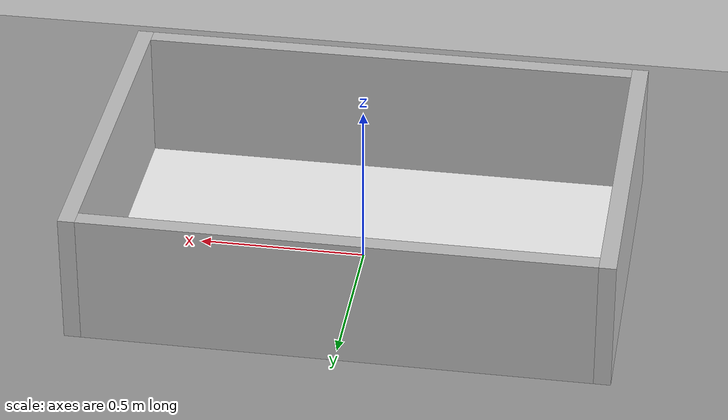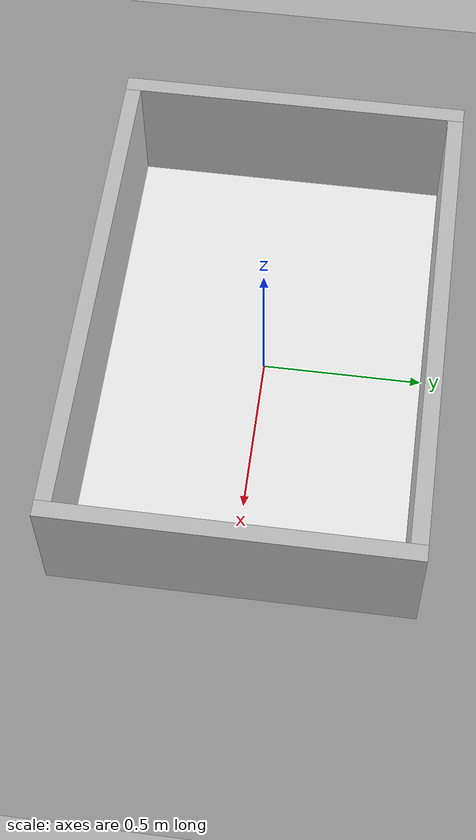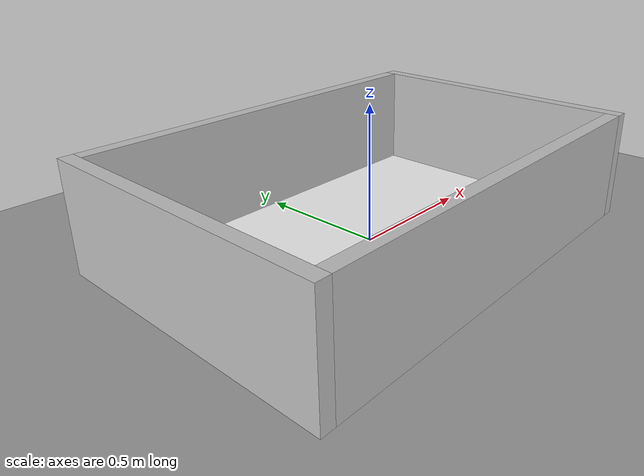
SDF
<?xml version="1.0" ?>
<sdf version="1.8">
  <world name="box_arena">

    <physics name="1ms" type="ignored">
      <max_step_size>0.001</max_step_size>
      <real_time_factor>1.0</real_time_factor>
    </physics>

    <plugin filename="gz-sim-physics-system"        name="gz::sim::systems::Physics"/>
    <plugin filename="gz-sim-sensors-system"         name="gz::sim::systems::Sensors">
      <render_engine>ogre2</render_engine>
    </plugin>
    <plugin filename="gz-sim-user-commands-system"   name="gz::sim::systems::UserCommands"/>
    <plugin filename="gz-sim-scene-broadcaster-system" name="gz::sim::systems::SceneBroadcaster"/>
    <plugin filename="gz-sim-imu-system"             name="gz::sim::systems::Imu"/>

    <light type="directional" name="sun">
      <cast_shadows>true</cast_shadows>
      <pose>0 0 10 0 0 0</pose>
      <diffuse>0.8 0.8 0.8 1</diffuse>
      <specular>0.2 0.2 0.2 1</specular>
      <attenuation>
        <range>1000</range>
        <constant>0.9</constant>
        <linear>0.01</linear>
        <quadratic>0.001</quadratic>
      </attenuation>
      <direction>-0.5 0.1 -0.9</direction>
    </light>

    <!-- Infinite ground plane for collision -->
    <model name="ground_plane">
      <static>true</static>
      <link name="link">
        <collision name="collision">
          <geometry>
            <plane>
              <normal>0 0 1</normal>
              <size>100 100</size>
            </plane>
          </geometry>
        </collision>
        <visual name="visual">
          <geometry>
            <plane>
              <normal>0 0 1</normal>
              <size>100 100</size>
            </plane>
          </geometry>
          <material>
            <ambient>0.6 0.6 0.6 1</ambient>
            <diffuse>0.6 0.6 0.6 1</diffuse>
            <specular>0.1 0.1 0.1 1</specular>
          </material>
        </visual>
      </link>
    </model>

    <!-- Arena floor marker (visual only, no collision – ground_plane handles it) -->
    <model name="arena_floor">
      <static>true</static>
      <pose>0 0 0.001 0 0 0</pose>
      <link name="link">
        <visual name="visual">
          <geometry>
            <box><size>1.5 1.0 0.002</size></box>
          </geometry>
          <material>
            <ambient>0.95 0.95 0.95 1</ambient>
            <diffuse>0.95 0.95 0.95 1</diffuse>
            <specular>0.05 0.05 0.05 1</specular>
          </material>
        </visual>
      </link>
    </model>

    <!-- North wall (y+) -->
    <model name="north_wall">
      <static>true</static>
      <pose>0 0.525 0.2 0 0 0</pose>
      <link name="link">
        <collision name="collision">
          <geometry><box><size>1.5 0.05 0.4</size></box></geometry>
        </collision>
        <visual name="visual">
          <geometry><box><size>1.5 0.05 0.4</size></box></geometry>
          <material>
            <ambient>0.75 0.75 0.75 1</ambient>
            <diffuse>0.75 0.75 0.75 1</diffuse>
            <specular>0.1 0.1 0.1 1</specular>
          </material>
        </visual>
      </link>
    </model>

    <!-- South wall (y-) -->
    <model name="south_wall">
      <static>true</static>
      <pose>0 -0.525 0.2 0 0 0</pose>
      <link name="link">
        <collision name="collision">
          <geometry><box><size>1.5 0.05 0.4</size></box></geometry>
        </collision>
        <visual name="visual">
          <geometry><box><size>1.5 0.05 0.4</size></box></geometry>
          <material>
            <ambient>0.75 0.75 0.75 1</ambient>
            <diffuse>0.75 0.75 0.75 1</diffuse>
            <specular>0.1 0.1 0.1 1</specular>
          </material>
        </visual>
      </link>
    </model>

    <!-- East wall (x+) — extended in y to close corners -->
    <model name="east_wall">
      <static>true</static>
      <pose>0.775 0 0.2 0 0 0</pose>
      <link name="link">
        <collision name="collision">
          <geometry><box><size>0.05 1.1 0.4</size></box></geometry>
        </collision>
        <visual name="visual">
          <geometry><box><size>0.05 1.1 0.4</size></box></geometry>
          <material>
            <ambient>0.75 0.75 0.75 1</ambient>
            <diffuse>0.75 0.75 0.75 1</diffuse>
            <specular>0.1 0.1 0.1 1</specular>
          </material>
        </visual>
      </link>
    </model>

    <!-- West wall (x-) — extended in y to close corners -->
    <model name="west_wall">
      <static>true</static>
      <pose>-0.775 0 0.2 0 0 0</pose>
      <link name="link">
        <collision name="collision">
          <geometry><box><size>0.05 1.1 0.4</size></box></geometry>
        </collision>
        <visual name="visual">
          <geometry><box><size>0.05 1.1 0.4</size></box></geometry>
          <material>
            <ambient>0.75 0.75 0.75 1</ambient>
            <diffuse>0.75 0.75 0.75 1</diffuse>
            <specular>0.1 0.1 0.1 1</specular>
          </material>
        </visual>
      </link>
    </model>

  </world>
</sdf>
